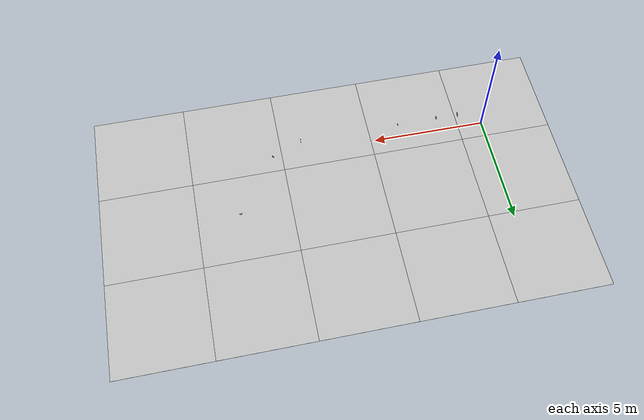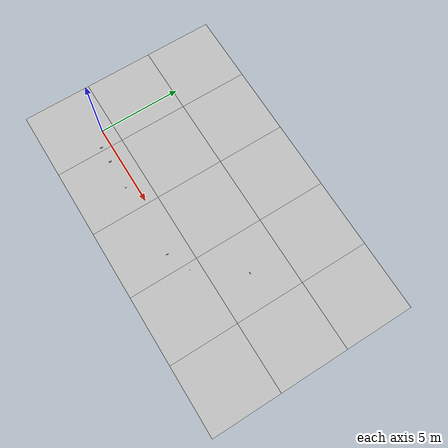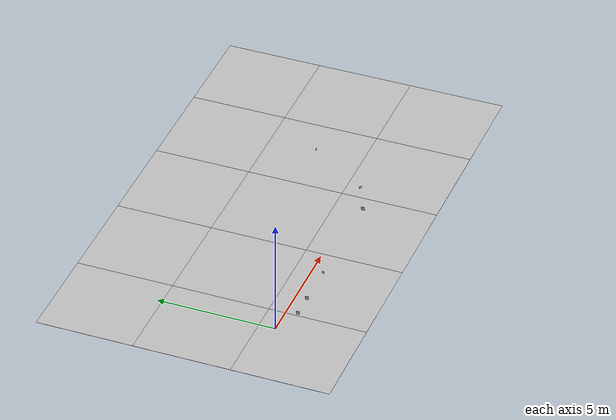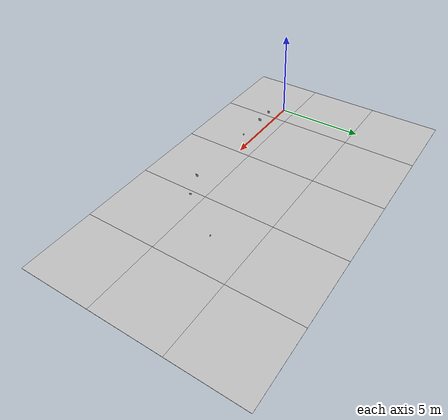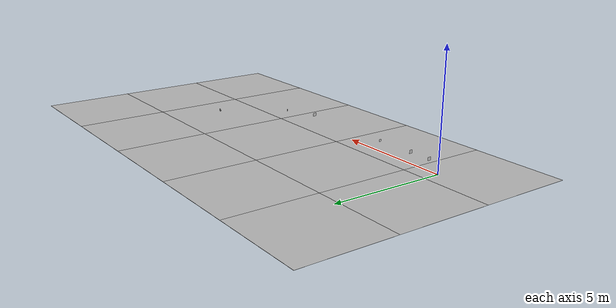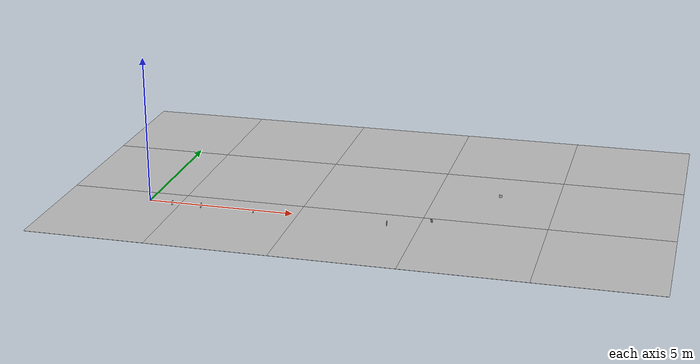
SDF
<sdf version="1.6">
 <world name="default">
  <light name="sun_light" type="directional">
   <pose>0 0 10 0 -0 0</pose>
   <diffuse>0.5 0.5 0.5 1</diffuse>
   <specular>0.1 0.1 0.1 1</specular>
   <direction>0.1 0.1 -0.9</direction>
   <attenuation>
    <range>20</range>
    <constant>0.5</constant>
    <linear>0.01</linear>
    <quadratic>0.001</quadratic>
   </attenuation>
  </light>
  <model name="Tile/0-0">
   <static>1</static>
   <link name="link">
    <collision name="collision">
     <geometry><plane><normal>0 0 1</normal><size>4.096 4.096</size></plane></geometry>
     <surface><friction><ode><mu>100</mu><mu2>50</mu2></ode></friction></surface>
    </collision>
    <visual name="visual">
     <cast_shadows>0</cast_shadows>
     <geometry><plane><normal>0 0 1</normal><size>4.096 4.096</size></plane></geometry>
     <material>
      <script>
       <uri>file://materials/scripts</uri>
       <uri>file://materials/textures</uri>
       <name>Tile/d2a0822d2df9434b2a10c1df4b51959f07967b7722c4dc5c94304e16f4e1de29</name>
      </script>
     </material>
    </visual>
   </link>
   <pose>-0.952 -1.3519999999999999 0 0 -0 0</pose>
  </model>
  <model name="Tile/0-1">
   <static>1</static>
   <link name="link">
    <collision name="collision">
     <geometry><plane><normal>0 0 1</normal><size>4.096 4.096</size></plane></geometry>
     <surface><friction><ode><mu>100</mu><mu2>50</mu2></ode></friction></surface>
    </collision>
    <visual name="visual">
     <cast_shadows>0</cast_shadows>
     <geometry><plane><normal>0 0 1</normal><size>4.096 4.096</size></plane></geometry>
     <material>
      <script>
       <uri>file://materials/scripts</uri>
       <uri>file://materials/textures</uri>
       <name>Tile/5eab350b8220ac9944dbdfa4ac3288c7c17e24c3bf5df0dfcf6173d64dae00a1</name>
      </script>
     </material>
    </visual>
   </link>
   <pose>-0.952 2.744 0 0 -0 0</pose>
  </model>
  <model name="Tile/0-2">
   <static>1</static>
   <link name="link">
    <collision name="collision">
     <geometry><plane><normal>0 0 1</normal><size>4.096 4.096</size></plane></geometry>
     <surface><friction><ode><mu>100</mu><mu2>50</mu2></ode></friction></surface>
    </collision>
    <visual name="visual">
     <cast_shadows>0</cast_shadows>
     <geometry><plane><normal>0 0 1</normal><size>4.096 4.096</size></plane></geometry>
     <material>
      <script>
       <uri>file://materials/scripts</uri>
       <uri>file://materials/textures</uri>
       <name>Tile/5eab350b8220ac9944dbdfa4ac3288c7c17e24c3bf5df0dfcf6173d64dae00a1</name>
      </script>
     </material>
    </visual>
   </link>
   <pose>-0.952 6.84 0 0 -0 0</pose>
  </model>
  <model name="Tile/1-0">
   <static>1</static>
   <link name="link">
    <collision name="collision">
     <geometry><plane><normal>0 0 1</normal><size>4.096 4.096</size></plane></geometry>
     <surface><friction><ode><mu>100</mu><mu2>50</mu2></ode></friction></surface>
    </collision>
    <visual name="visual">
     <cast_shadows>0</cast_shadows>
     <geometry><plane><normal>0 0 1</normal><size>4.096 4.096</size></plane></geometry>
     <material>
      <script>
       <uri>file://materials/scripts</uri>
       <uri>file://materials/textures</uri>
       <name>Tile/5eff024a87cac5024526e786b81cd2b12f3e8b63837fc9072c909132566b2359</name>
      </script>
     </material>
    </visual>
   </link>
   <pose>3.144 -1.3519999999999999 0 0 -0 0</pose>
  </model>
  <model name="Tile/1-1">
   <static>1</static>
   <link name="link">
    <collision name="collision">
     <geometry><plane><normal>0 0 1</normal><size>4.096 4.096</size></plane></geometry>
     <surface><friction><ode><mu>100</mu><mu2>50</mu2></ode></friction></surface>
    </collision>
    <visual name="visual">
     <cast_shadows>0</cast_shadows>
     <geometry><plane><normal>0 0 1</normal><size>4.096 4.096</size></plane></geometry>
     <material>
      <script>
       <uri>file://materials/scripts</uri>
       <uri>file://materials/textures</uri>
       <name>Tile/5eab350b8220ac9944dbdfa4ac3288c7c17e24c3bf5df0dfcf6173d64dae00a1</name>
      </script>
     </material>
    </visual>
   </link>
   <pose>3.144 2.744 0 0 -0 0</pose>
  </model>
  <model name="Tile/1-2">
   <static>1</static>
   <link name="link">
    <collision name="collision">
     <geometry><plane><normal>0 0 1</normal><size>4.096 4.096</size></plane></geometry>
     <surface><friction><ode><mu>100</mu><mu2>50</mu2></ode></friction></surface>
    </collision>
    <visual name="visual">
     <cast_shadows>0</cast_shadows>
     <geometry><plane><normal>0 0 1</normal><size>4.096 4.096</size></plane></geometry>
     <material>
      <script>
       <uri>file://materials/scripts</uri>
       <uri>file://materials/textures</uri>
       <name>Tile/5eab350b8220ac9944dbdfa4ac3288c7c17e24c3bf5df0dfcf6173d64dae00a1</name>
      </script>
     </material>
    </visual>
   </link>
   <pose>3.144 6.84 0 0 -0 0</pose>
  </model>
  <model name="Tile/2-0">
   <static>1</static>
   <link name="link">
    <collision name="collision">
     <geometry><plane><normal>0 0 1</normal><size>4.096 4.096</size></plane></geometry>
     <surface><friction><ode><mu>100</mu><mu2>50</mu2></ode></friction></surface>
    </collision>
    <visual name="visual">
     <cast_shadows>0</cast_shadows>
     <geometry><plane><normal>0 0 1</normal><size>4.096 4.096</size></plane></geometry>
     <material>
      <script>
       <uri>file://materials/scripts</uri>
       <uri>file://materials/textures</uri>
       <name>Tile/b7b64903f2c303878402e6b70bb4b01a6a20789d33a3b97cee29bdea22ca618a</name>
      </script>
     </material>
    </visual>
   </link>
   <pose>7.24 -1.3519999999999999 0 0 -0 0</pose>
  </model>
  <model name="Tile/2-1">
   <static>1</static>
   <link name="link">
    <collision name="collision">
     <geometry><plane><normal>0 0 1</normal><size>4.096 4.096</size></plane></geometry>
     <surface><friction><ode><mu>100</mu><mu2>50</mu2></ode></friction></surface>
    </collision>
    <visual name="visual">
     <cast_shadows>0</cast_shadows>
     <geometry><plane><normal>0 0 1</normal><size>4.096 4.096</size></plane></geometry>
     <material>
      <script>
       <uri>file://materials/scripts</uri>
       <uri>file://materials/textures</uri>
       <name>Tile/e322f4ec05a0f26bdce95ee6fae9c7122393fa7dda64d4c88c2b29c7826f7c91</name>
      </script>
     </material>
    </visual>
   </link>
   <pose>7.24 2.744 0 0 -0 0</pose>
  </model>
  <model name="Tile/2-2">
   <static>1</static>
   <link name="link">
    <collision name="collision">
     <geometry><plane><normal>0 0 1</normal><size>4.096 4.096</size></plane></geometry>
     <surface><friction><ode><mu>100</mu><mu2>50</mu2></ode></friction></surface>
    </collision>
    <visual name="visual">
     <cast_shadows>0</cast_shadows>
     <geometry><plane><normal>0 0 1</normal><size>4.096 4.096</size></plane></geometry>
     <material>
      <script>
       <uri>file://materials/scripts</uri>
       <uri>file://materials/textures</uri>
       <name>Tile/5eab350b8220ac9944dbdfa4ac3288c7c17e24c3bf5df0dfcf6173d64dae00a1</name>
      </script>
     </material>
    </visual>
   </link>
   <pose>7.24 6.84 0 0 -0 0</pose>
  </model>
  <model name="Tile/3-0">
   <static>1</static>
   <link name="link">
    <collision name="collision">
     <geometry><plane><normal>0 0 1</normal><size>4.096 4.096</size></plane></geometry>
     <surface><friction><ode><mu>100</mu><mu2>50</mu2></ode></friction></surface>
    </collision>
    <visual name="visual">
     <cast_shadows>0</cast_shadows>
     <geometry><plane><normal>0 0 1</normal><size>4.096 4.096</size></plane></geometry>
     <material>
      <script>
       <uri>file://materials/scripts</uri>
       <uri>file://materials/textures</uri>
       <name>Tile/1dd38ee66886c497082b0404d4d1ab97731f7810e4555c97b40f37405b530f9e</name>
      </script>
     </material>
    </visual>
   </link>
   <pose>11.336 -1.3519999999999999 0 0 -0 0</pose>
  </model>
  <model name="Tile/3-1">
   <static>1</static>
   <link name="link">
    <collision name="collision">
     <geometry><plane><normal>0 0 1</normal><size>4.096 4.096</size></plane></geometry>
     <surface><friction><ode><mu>100</mu><mu2>50</mu2></ode></friction></surface>
    </collision>
    <visual name="visual">
     <cast_shadows>0</cast_shadows>
     <geometry><plane><normal>0 0 1</normal><size>4.096 4.096</size></plane></geometry>
     <material>
      <script>
       <uri>file://materials/scripts</uri>
       <uri>file://materials/textures</uri>
       <name>Tile/5015aed08a29ef81a30eb7432530cf4f53ed80b276cf069be0d54bcc025c738a</name>
      </script>
     </material>
    </visual>
   </link>
   <pose>11.336 2.744 0 0 -0 0</pose>
  </model>
  <model name="Tile/3-2">
   <static>1</static>
   <link name="link">
    <collision name="collision">
     <geometry><plane><normal>0 0 1</normal><size>4.096 4.096</size></plane></geometry>
     <surface><friction><ode><mu>100</mu><mu2>50</mu2></ode></friction></surface>
    </collision>
    <visual name="visual">
     <cast_shadows>0</cast_shadows>
     <geometry><plane><normal>0 0 1</normal><size>4.096 4.096</size></plane></geometry>
     <material>
      <script>
       <uri>file://materials/scripts</uri>
       <uri>file://materials/textures</uri>
       <name>Tile/ee4ee41941b95aad5ec239bf2ccc640aabc79e10bd830d8d9550a5c67c09f5f6</name>
      </script>
     </material>
    </visual>
   </link>
   <pose>11.336 6.84 0 0 -0 0</pose>
  </model>
  <model name="Tile/4-0">
   <static>1</static>
   <link name="link">
    <collision name="collision">
     <geometry><plane><normal>0 0 1</normal><size>4.096 4.096</size></plane></geometry>
     <surface><friction><ode><mu>100</mu><mu2>50</mu2></ode></friction></surface>
    </collision>
    <visual name="visual">
     <cast_shadows>0</cast_shadows>
     <geometry><plane><normal>0 0 1</normal><size>4.096 4.096</size></plane></geometry>
     <material>
      <script>
       <uri>file://materials/scripts</uri>
       <uri>file://materials/textures</uri>
       <name>Tile/5eab350b8220ac9944dbdfa4ac3288c7c17e24c3bf5df0dfcf6173d64dae00a1</name>
      </script>
     </material>
    </visual>
   </link>
   <pose>15.431999999999999 -1.3519999999999999 0 0 -0 0</pose>
  </model>
  <model name="Tile/4-1">
   <static>1</static>
   <link name="link">
    <collision name="collision">
     <geometry><plane><normal>0 0 1</normal><size>4.096 4.096</size></plane></geometry>
     <surface><friction><ode><mu>100</mu><mu2>50</mu2></ode></friction></surface>
    </collision>
    <visual name="visual">
     <cast_shadows>0</cast_shadows>
     <geometry><plane><normal>0 0 1</normal><size>4.096 4.096</size></plane></geometry>
     <material>
      <script>
       <uri>file://materials/scripts</uri>
       <uri>file://materials/textures</uri>
       <name>Tile/5eab350b8220ac9944dbdfa4ac3288c7c17e24c3bf5df0dfcf6173d64dae00a1</name>
      </script>
     </material>
    </visual>
   </link>
   <pose>15.431999999999999 2.744 0 0 -0 0</pose>
  </model>
  <model name="Tile/4-2">
   <static>1</static>
   <link name="link">
    <collision name="collision">
     <geometry><plane><normal>0 0 1</normal><size>4.096 4.096</size></plane></geometry>
     <surface><friction><ode><mu>100</mu><mu2>50</mu2></ode></friction></surface>
    </collision>
    <visual name="visual">
     <cast_shadows>0</cast_shadows>
     <geometry><plane><normal>0 0 1</normal><size>4.096 4.096</size></plane></geometry>
     <material>
      <script>
       <uri>file://materials/scripts</uri>
       <uri>file://materials/textures</uri>
       <name>Tile/5eab350b8220ac9944dbdfa4ac3288c7c17e24c3bf5df0dfcf6173d64dae00a1</name>
      </script>
     </material>
    </visual>
   </link>
   <pose>15.431999999999999 6.84 0 0 -0 0</pose>
  </model>
  <model name="Sign/-5">
   <static>1</static>
   <link name="link">
    <visual name="visual">
     <cast_shadows>0</cast_shadows>
     <geometry><plane><normal>0 0 1</normal><size>0.15 0.15</size></plane></geometry>
     <material>
      <script>
       <uri>file://materials/scripts</uri>
       <uri>file://materials/textures</uri>
       <name>Sign/stvo-274.1</name>
      </script>
     </material>
    </visual>
   </link>
   <pose>1.005 -0.55 0.22499999999999998 1.5707963267948966 0 4.71238898038469</pose>
  </model>
  <model name="Sign/-10">
   <static>1</static>
   <link name="link">
    <visual name="visual">
     <cast_shadows>0</cast_shadows>
     <geometry><plane><normal>0 0 1</normal><size>0.15 0.15</size></plane></geometry>
     <material>
      <script>
       <uri>file://materials/scripts</uri>
       <uri>file://materials/textures</uri>
       <name>Sign/stvo-350-10</name>
      </script>
     </material>
    </visual>
   </link>
   <pose>2.0149999999999997 -0.55 0.22499999999999998 1.5707963267948966 0 4.71238898038469</pose>
  </model>
  <model name="Sign/-20">
   <static>1</static>
   <link name="link">
    <visual name="visual">
     <cast_shadows>0</cast_shadows>
     <geometry><plane><normal>0 0 1</normal><size>0.1 0.1</size></plane></geometry>
     <material>
      <script>
       <uri>file://materials/scripts</uri>
       <uri>file://materials/textures</uri>
       <name>Sign/stvo-208</name>
      </script>
     </material>
    </visual>
   </link>
   <pose>3.8249999999999993 -0.55 0.2 1.5707963267948966 0 4.71238898038469</pose>
  </model>
  <model name="Sign/-32">
   <static>1</static>
   <link name="link">
    <visual name="visual">
     <cast_shadows>0</cast_shadows>
     <geometry><plane><normal>0 0 1</normal><size>0.15 0.15</size></plane></geometry>
     <material>
      <script>
       <uri>file://materials/scripts</uri>
       <uri>file://materials/textures</uri>
       <name>Sign/stvo-274.2</name>
      </script>
     </material>
    </visual>
   </link>
   <pose>8.334999999999999 -0.55 0.22499999999999998 1.5707963267948966 0 4.71238898038469</pose>
  </model>
  <model name="Sign/-45">
   <static>1</static>
   <link name="link">
    <visual name="visual">
     <cast_shadows>0</cast_shadows>
     <geometry><plane><normal>0 0 1</normal><size>0.1 0.1</size></plane></geometry>
     <material>
      <script>
       <uri>file://materials/scripts</uri>
       <uri>file://materials/textures</uri>
       <name>Sign/stvo-306</name>
      </script>
     </material>
    </visual>
   </link>
   <pose>9.68350288425444 0.05649711574555982 0.2 1.5707963267948966 0 5.497787143782138</pose>
  </model>
  <model name="Sign/-58">
   <static>1</static>
   <link name="link">
    <visual name="visual">
     <cast_shadows>0</cast_shadows>
     <geometry><plane><normal>0 0 1</normal><size>0.1 0.1</size></plane></geometry>
     <material>
      <script>
       <uri>file://materials/scripts</uri>
       <uri>file://materials/textures</uri>
       <name>Sign/stvo-306</name>
      </script>
     </material>
    </visual>
   </link>
   <pose>11.512792206135785 2.672792206135786 0.2 1.5707963267948966 0 6.283185307179586</pose>
  </model>
 </world>
</sdf>
